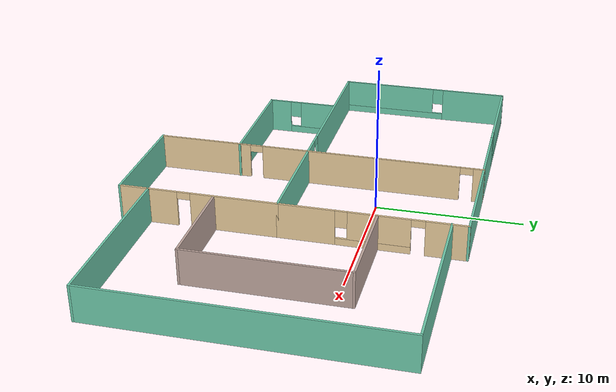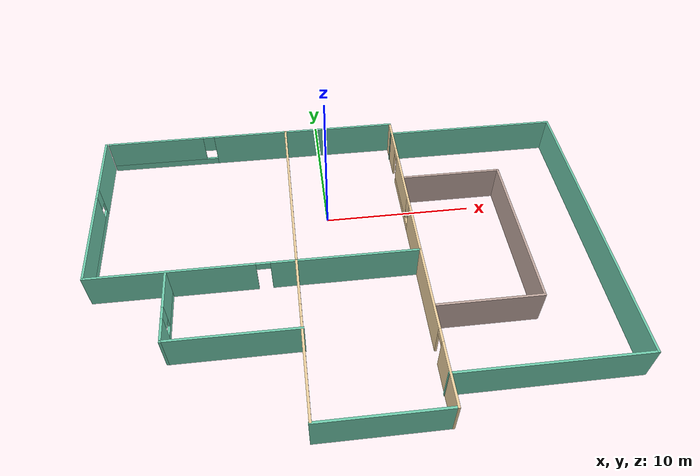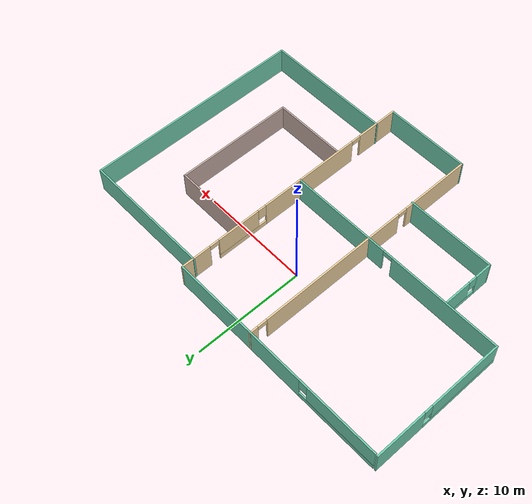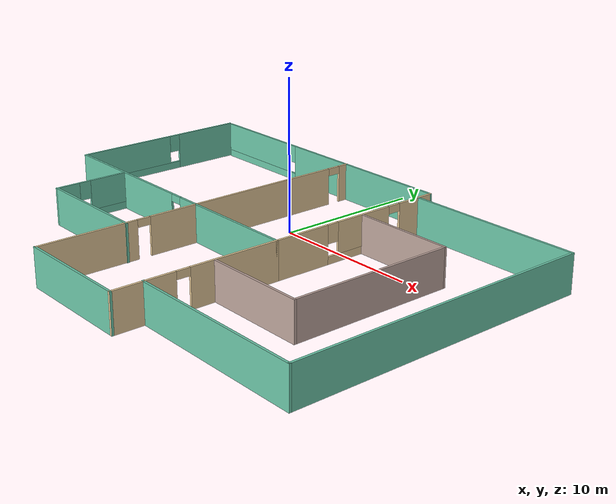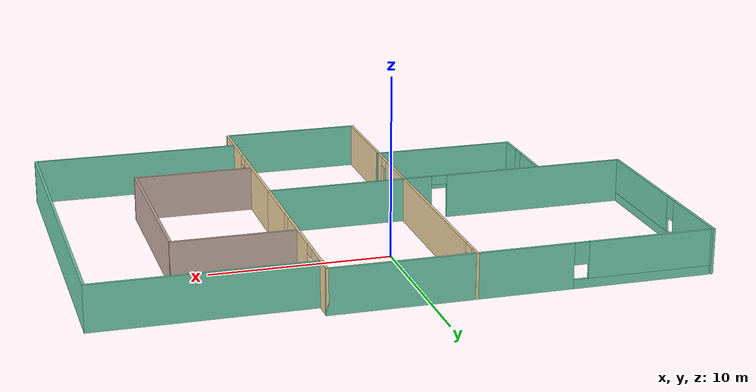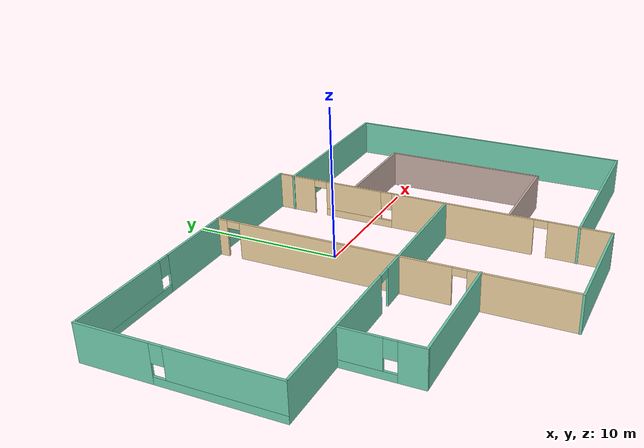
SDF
<?xml version='1.0'?>
<sdf version='1.6'>
  <model name='Building'>
    <pose frame=''>0.875279 -4.65541 0 0 -0 0</pose>
    <link name='Wall_10'>
      <pose frame=''>4.52008 5.41728 0 0 -0 1.5708</pose>
      <visual name='Wall_10_Visual_0'>
        <pose frame=''>-4.3118 0 1.25 0 -0 0</pose>
        <geometry>
          <box>
            <size>3.8764 0.15 2.5</size>
          </box>
        </geometry>
        <material>
          <script>
            <uri>file://media/materials/scripts/gazebo.material</uri>
            <name>Gazebo/Grey</name>
          </script>
          <ambient>0.921569 0.807843 0.615686 1</ambient>
        </material>
        <meta>
          <layer>0</layer>
        </meta>
      </visual>
      <collision name='Wall_10_Collision_0'>
        <geometry>
          <box>
            <size>3.8764 0.15 2.5</size>
          </box>
        </geometry>
        <pose frame=''>-4.3118 0 1.25 0 -0 0</pose>
      </collision>
      <visual name='Wall_10_Visual_1'>
        <pose frame=''>4.845 0 1.25 0 -0 0</pose>
        <geometry>
          <box>
            <size>2.80999 0.15 2.5</size>
          </box>
        </geometry>
        <material>
          <script>
            <uri>file://media/materials/scripts/gazebo.material</uri>
            <name>Gazebo/Grey</name>
          </script>
          <ambient>0.921569 0.807843 0.615686 1</ambient>
        </material>
        <meta>
          <layer>0</layer>
        </meta>
      </visual>
      <collision name='Wall_10_Collision_1'>
        <geometry>
          <box>
            <size>2.80999 0.15 2.5</size>
          </box>
        </geometry>
        <pose frame=''>4.845 0 1.25 0 -0 0</pose>
      </collision>
      <visual name='Wall_10_Visual_2'>
        <pose frame=''>0.083203 0 0.25 0 -0 0</pose>
        <geometry>
          <box>
            <size>4.91361 0.15 0.5</size>
          </box>
        </geometry>
        <material>
          <script>
            <uri>file://media/materials/scripts/gazebo.material</uri>
            <name>Gazebo/Grey</name>
          </script>
          <ambient>0.921569 0.807843 0.615686 1</ambient>
        </material>
        <meta>
          <layer>0</layer>
        </meta>
      </visual>
      <collision name='Wall_10_Collision_2'>
        <geometry>
          <box>
            <size>4.91361 0.15 0.5</size>
          </box>
        </geometry>
        <pose frame=''>0.083203 0 0.25 0 -0 0</pose>
      </collision>
      <visual name='Wall_10_Visual_3'>
        <pose frame=''>0.483203 0 1.5 0 -0 0</pose>
        <geometry>
          <box>
            <size>4.11361 0.15 2</size>
          </box>
        </geometry>
        <material>
          <script>
            <uri>file://media/materials/scripts/gazebo.material</uri>
            <name>Gazebo/Grey</name>
          </script>
          <ambient>0.921569 0.807843 0.615686 1</ambient>
        </material>
        <meta>
          <layer>0</layer>
        </meta>
      </visual>
      <collision name='Wall_10_Collision_3'>
        <geometry>
          <box>
            <size>4.11361 0.15 2</size>
          </box>
        </geometry>
        <pose frame=''>0.483203 0 1.5 0 -0 0</pose>
      </collision>
      <visual name='Wall_10_Visual_4'>
        <pose frame=''>-1.9736 0 1.9 0 -0 0</pose>
        <geometry>
          <box>
            <size>0.8 0.15 1.2</size>
          </box>
        </geometry>
        <material>
          <script>
            <uri>file://media/materials/scripts/gazebo.material</uri>
            <name>Gazebo/Grey</name>
          </script>
          <ambient>0.921569 0.807843 0.615686 1</ambient>
        </material>
        <meta>
          <layer>0</layer>
        </meta>
      </visual>
      <collision name='Wall_10_Collision_4'>
        <geometry>
          <box>
            <size>0.8 0.15 1.2</size>
          </box>
        </geometry>
        <pose frame=''>-1.9736 0 1.9 0 -0 0</pose>
      </collision>
      <visual name='Wall_10_Visual_5'>
        <pose frame=''>2.99001 0 2.25 0 -0 0</pose>
        <geometry>
          <box>
            <size>0.9 0.15 0.5</size>
          </box>
        </geometry>
        <material>
          <script>
            <uri>file://media/materials/scripts/gazebo.material</uri>
            <name>Gazebo/Grey</name>
          </script>
          <ambient>0.921569 0.807843 0.615686 1</ambient>
        </material>
        <meta>
          <layer>0</layer>
        </meta>
      </visual>
      <collision name='Wall_10_Collision_5'>
        <geometry>
          <box>
            <size>0.9 0.15 0.5</size>
          </box>
        </geometry>
        <pose frame=''>2.99001 0 2.25 0 -0 0</pose>
      </collision>
    </link>
    <link name='Wall_11'>
      <pose frame=''>-5.77992 11.5923 0 0 -0 3.14159</pose>
      <visual name='Wall_11_Visual_0'>
        <pose frame=''>-3.80191 0 1.25 0 -0 0</pose>
        <geometry>
          <box>
            <size>13.1462 0.15 2.5</size>
          </box>
        </geometry>
        <material>
          <script>
            <uri>file://media/materials/scripts/gazebo.material</uri>
            <name>Gazebo/Grey</name>
          </script>
          <ambient>0.435294 0.796078 0.67451 1</ambient>
        </material>
        <meta>
          <layer>0</layer>
        </meta>
      </visual>
      <collision name='Wall_11_Collision_0'>
        <geometry>
          <box>
            <size>13.1462 0.15 2.5</size>
          </box>
        </geometry>
        <pose frame=''>-3.80191 0 1.25 0 -0 0</pose>
      </collision>
      <visual name='Wall_11_Visual_1'>
        <pose frame=''>6.57309 0 0.25 0 -0 0</pose>
        <geometry>
          <box>
            <size>7.60381 0.15 0.5</size>
          </box>
        </geometry>
        <material>
          <script>
            <uri>file://media/materials/scripts/gazebo.material</uri>
            <name>Gazebo/Grey</name>
          </script>
          <ambient>0.435294 0.796078 0.67451 1</ambient>
        </material>
        <meta>
          <layer>0</layer>
        </meta>
      </visual>
      <collision name='Wall_11_Collision_1'>
        <geometry>
          <box>
            <size>7.60381 0.15 0.5</size>
          </box>
        </geometry>
        <pose frame=''>6.57309 0 0.25 0 -0 0</pose>
      </collision>
      <visual name='Wall_11_Visual_2'>
        <pose frame=''>6.97309 0 1.5 0 -0 0</pose>
        <geometry>
          <box>
            <size>6.80381 0.15 2</size>
          </box>
        </geometry>
        <material>
          <script>
            <uri>file://media/materials/scripts/gazebo.material</uri>
            <name>Gazebo/Grey</name>
          </script>
          <ambient>0.435294 0.796078 0.67451 1</ambient>
        </material>
        <meta>
          <layer>0</layer>
        </meta>
      </visual>
      <collision name='Wall_11_Collision_2'>
        <geometry>
          <box>
            <size>6.80381 0.15 2</size>
          </box>
        </geometry>
        <pose frame=''>6.97309 0 1.5 0 -0 0</pose>
      </collision>
      <visual name='Wall_11_Visual_3'>
        <pose frame=''>3.17119 0 1.9 0 -0 0</pose>
        <geometry>
          <box>
            <size>0.8 0.15 1.2</size>
          </box>
        </geometry>
        <material>
          <script>
            <uri>file://media/materials/scripts/gazebo.material</uri>
            <name>Gazebo/Grey</name>
          </script>
          <ambient>0.435294 0.796078 0.67451 1</ambient>
        </material>
        <meta>
          <layer>0</layer>
        </meta>
      </visual>
      <collision name='Wall_11_Collision_3'>
        <geometry>
          <box>
            <size>0.8 0.15 1.2</size>
          </box>
        </geometry>
        <pose frame=''>3.17119 0 1.9 0 -0 0</pose>
      </collision>
    </link>
    <link name='Wall_13'>
      <pose frame=''>-3.30365 0.032723 0 0 0 -1.5708</pose>
      <visual name='Wall_13_Visual_0'>
        <pose frame=''>-11.2544 0 1.25 0 -0 0</pose>
        <geometry>
          <box>
            <size>0.791174 0.15 2.5</size>
          </box>
        </geometry>
        <material>
          <script>
            <uri>file://media/materials/scripts/gazebo.material</uri>
            <name>Gazebo/Grey</name>
          </script>
          <ambient>0.921569 0.807843 0.615686 1</ambient>
        </material>
        <meta>
          <layer>0</layer>
        </meta>
      </visual>
      <collision name='Wall_13_Collision_0'>
        <geometry>
          <box>
            <size>0.791174 0.15 2.5</size>
          </box>
        </geometry>
        <pose frame=''>-11.2544 0 1.25 0 -0 0</pose>
      </collision>
      <visual name='Wall_13_Visual_1'>
        <pose frame=''>-2.92273 0 1.25 0 -0 0</pose>
        <geometry>
          <box>
            <size>14.0722 0.15 2.5</size>
          </box>
        </geometry>
        <material>
          <script>
            <uri>file://media/materials/scripts/gazebo.material</uri>
            <name>Gazebo/Grey</name>
          </script>
          <ambient>0.921569 0.807843 0.615686 1</ambient>
        </material>
        <meta>
          <layer>0</layer>
        </meta>
      </visual>
      <collision name='Wall_13_Collision_1'>
        <geometry>
          <box>
            <size>14.0722 0.15 2.5</size>
          </box>
        </geometry>
        <pose frame=''>-2.92273 0 1.25 0 -0 0</pose>
      </collision>
      <visual name='Wall_13_Visual_2'>
        <pose frame=''>8.33168 0 1.25 0 -0 0</pose>
        <geometry>
          <box>
            <size>6.63663 0.15 2.5</size>
          </box>
        </geometry>
        <material>
          <script>
            <uri>file://media/materials/scripts/gazebo.material</uri>
            <name>Gazebo/Grey</name>
          </script>
          <ambient>0.921569 0.807843 0.615686 1</ambient>
        </material>
        <meta>
          <layer>0</layer>
        </meta>
      </visual>
      <collision name='Wall_13_Collision_2'>
        <geometry>
          <box>
            <size>6.63663 0.15 2.5</size>
          </box>
        </geometry>
        <pose frame=''>8.33168 0 1.25 0 -0 0</pose>
      </collision>
      <visual name='Wall_13_Visual_3'>
        <pose frame=''>-10.4088 0 2.25 0 -0 0</pose>
        <geometry>
          <box>
            <size>0.9 0.15 0.5</size>
          </box>
        </geometry>
        <material>
          <script>
            <uri>file://media/materials/scripts/gazebo.material</uri>
            <name>Gazebo/Grey</name>
          </script>
          <ambient>0.921569 0.807843 0.615686 1</ambient>
        </material>
        <meta>
          <layer>0</layer>
        </meta>
      </visual>
      <collision name='Wall_13_Collision_3'>
        <geometry>
          <box>
            <size>0.9 0.15 0.5</size>
          </box>
        </geometry>
        <pose frame=''>-10.4088 0 2.25 0 -0 0</pose>
      </collision>
      <visual name='Wall_13_Visual_4'>
        <pose frame=''>4.56337 0 2.25 0 -0 0</pose>
        <geometry>
          <box>
            <size>0.9 0.15 0.5</size>
          </box>
        </geometry>
        <material>
          <script>
            <uri>file://media/materials/scripts/gazebo.material</uri>
            <name>Gazebo/Grey</name>
          </script>
          <ambient>0.921569 0.807843 0.615686 1</ambient>
        </material>
        <meta>
          <layer>0</layer>
        </meta>
      </visual>
      <collision name='Wall_13_Collision_4'>
        <geometry>
          <box>
            <size>0.9 0.15 0.5</size>
          </box>
        </geometry>
        <pose frame=''>4.56337 0 2.25 0 -0 0</pose>
      </collision>
    </link>
    <link name='Wall_20'>
      <pose frame=''>4.52008 -6.18272 0 0 0 -1.5708</pose>
      <visual name='Wall_20_Visual_0'>
        <pose frame=''>-2.49911 0 1.25 0 -0 0</pose>
        <geometry>
          <box>
            <size>6.00178 0.15 2.5</size>
          </box>
        </geometry>
        <material>
          <script>
            <uri>file://media/materials/scripts/gazebo.material</uri>
            <name>Gazebo/Grey</name>
          </script>
          <ambient>0.921569 0.807843 0.615686 1</ambient>
        </material>
        <meta>
          <layer>0</layer>
        </meta>
      </visual>
      <collision name='Wall_20_Collision_0'>
        <geometry>
          <box>
            <size>6.00178 0.15 2.5</size>
          </box>
        </geometry>
        <pose frame=''>-2.49911 0 1.25 0 -0 0</pose>
      </collision>
      <visual name='Wall_20_Visual_1'>
        <pose frame=''>3.45089 0 1.25 0 -0 0</pose>
        <geometry>
          <box>
            <size>4.09822 0.15 2.5</size>
          </box>
        </geometry>
        <material>
          <script>
            <uri>file://media/materials/scripts/gazebo.material</uri>
            <name>Gazebo/Grey</name>
          </script>
          <ambient>0.921569 0.807843 0.615686 1</ambient>
        </material>
        <meta>
          <layer>0</layer>
        </meta>
      </visual>
      <collision name='Wall_20_Collision_1'>
        <geometry>
          <box>
            <size>4.09822 0.15 2.5</size>
          </box>
        </geometry>
        <pose frame=''>3.45089 0 1.25 0 -0 0</pose>
      </collision>
      <visual name='Wall_20_Visual_2'>
        <pose frame=''>0.951781 0 2.25 0 -0 0</pose>
        <geometry>
          <box>
            <size>0.9 0.15 0.5</size>
          </box>
        </geometry>
        <material>
          <script>
            <uri>file://media/materials/scripts/gazebo.material</uri>
            <name>Gazebo/Grey</name>
          </script>
          <ambient>0.921569 0.807843 0.615686 1</ambient>
        </material>
        <meta>
          <layer>0</layer>
        </meta>
      </visual>
      <collision name='Wall_20_Collision_2'>
        <geometry>
          <box>
            <size>0.9 0.15 0.5</size>
          </box>
        </geometry>
        <pose frame=''>0.951781 0 2.25 0 -0 0</pose>
      </collision>
    </link>
    <link name='Wall_21'>
      <collision name='Wall_21_Collision'>
        <geometry>
          <box>
            <size>8 0.15 2.5</size>
          </box>
        </geometry>
        <pose frame=''>0 0 1.25 0 -0 0</pose>
      </collision>
      <visual name='Wall_21_Visual'>
        <pose frame=''>0 0 1.25 0 -0 0</pose>
        <geometry>
          <box>
            <size>8 0.15 2.5</size>
          </box>
        </geometry>
        <material>
          <script>
            <uri>file://media/materials/scripts/gazebo.material</uri>
            <name>Gazebo/Grey</name>
          </script>
          <ambient>0.435294 0.796078 0.67451 1</ambient>
        </material>
        <meta>
          <layer>0</layer>
        </meta>
      </visual>
      <pose frame=''>0.595079 -11.6077 0 0 -0 3.14159</pose>
    </link>
    <link name='Wall_23'>
      <collision name='Wall_23_Collision'>
        <geometry>
          <box>
            <size>8.25 0.15 2.5</size>
          </box>
        </geometry>
        <pose frame=''>0 0 1.25 0 -0 0</pose>
      </collision>
      <visual name='Wall_23_Visual'>
        <pose frame=''>0 0 1.25 0 -0 0</pose>
        <geometry>
          <box>
            <size>8.25 0.15 2.5</size>
          </box>
        </geometry>
        <material>
          <script>
            <uri>file://media/materials/scripts/gazebo.material</uri>
            <name>Gazebo/Grey</name>
          </script>
          <ambient>0.435294 0.796078 0.67451 1</ambient>
        </material>
        <meta>
          <layer>0</layer>
        </meta>
      </visual>
      <pose frame=''>-7.30029 -5.76127 0 0 -0 3.14159</pose>
    </link>
    <link name='Wall_24'>
      <pose frame=''>-11.3503 -3.33627 0 0 -0 1.5708</pose>
      <visual name='Wall_24_Visual_0'>
        <pose frame=''>-1.68102 0 1.25 0 -0 0</pose>
        <geometry>
          <box>
            <size>1.63796 0.15 2.5</size>
          </box>
        </geometry>
        <material>
          <script>
            <uri>file://media/materials/scripts/gazebo.material</uri>
            <name>Gazebo/Grey</name>
          </script>
          <ambient>0.435294 0.796078 0.67451 1</ambient>
        </material>
        <meta>
          <layer>0</layer>
        </meta>
      </visual>
      <collision name='Wall_24_Collision_0'>
        <geometry>
          <box>
            <size>1.63796 0.15 2.5</size>
          </box>
        </geometry>
        <pose frame=''>-1.68102 0 1.25 0 -0 0</pose>
      </collision>
      <visual name='Wall_24_Visual_1'>
        <pose frame=''>0.818982 0 0.25 0 -0 0</pose>
        <geometry>
          <box>
            <size>3.36204 0.15 0.5</size>
          </box>
        </geometry>
        <material>
          <script>
            <uri>file://media/materials/scripts/gazebo.material</uri>
            <name>Gazebo/Grey</name>
          </script>
          <ambient>0.435294 0.796078 0.67451 1</ambient>
        </material>
        <meta>
          <layer>0</layer>
        </meta>
      </visual>
      <collision name='Wall_24_Collision_1'>
        <geometry>
          <box>
            <size>3.36204 0.15 0.5</size>
          </box>
        </geometry>
        <pose frame=''>0.818982 0 0.25 0 -0 0</pose>
      </collision>
      <visual name='Wall_24_Visual_2'>
        <pose frame=''>1.21898 0 1.5 0 -0 0</pose>
        <geometry>
          <box>
            <size>2.56203 0.15 2</size>
          </box>
        </geometry>
        <material>
          <script>
            <uri>file://media/materials/scripts/gazebo.material</uri>
            <name>Gazebo/Grey</name>
          </script>
          <ambient>0.435294 0.796078 0.67451 1</ambient>
        </material>
        <meta>
          <layer>0</layer>
        </meta>
      </visual>
      <collision name='Wall_24_Collision_2'>
        <geometry>
          <box>
            <size>2.56203 0.15 2</size>
          </box>
        </geometry>
        <pose frame=''>1.21898 0 1.5 0 -0 0</pose>
      </collision>
      <visual name='Wall_24_Visual_3'>
        <pose frame=''>-0.462035 0 1.9 0 -0 0</pose>
        <geometry>
          <box>
            <size>0.8 0.15 1.2</size>
          </box>
        </geometry>
        <material>
          <script>
            <uri>file://media/materials/scripts/gazebo.material</uri>
            <name>Gazebo/Grey</name>
          </script>
          <ambient>0.435294 0.796078 0.67451 1</ambient>
        </material>
        <meta>
          <layer>0</layer>
        </meta>
      </visual>
      <collision name='Wall_24_Collision_3'>
        <geometry>
          <box>
            <size>0.8 0.15 1.2</size>
          </box>
        </geometry>
        <pose frame=''>-0.462035 0 1.9 0 -0 0</pose>
      </collision>
    </link>
    <link name='Wall_27'>
      <collision name='Wall_27_Collision'>
        <geometry>
          <box>
            <size>12 0.15 2.5</size>
          </box>
        </geometry>
        <pose frame=''>0 0 1.25 0 -0 0</pose>
      </collision>
      <visual name='Wall_27_Visual'>
        <pose frame=''>0 0 1.25 0 -0 0</pose>
        <geometry>
          <box>
            <size>12 0.15 2.5</size>
          </box>
        </geometry>
        <material>
          <script>
            <uri>file://media/materials/scripts/gazebo.material</uri>
            <name>Gazebo/Grey</name>
          </script>
          <ambient>0.435294 0.796078 0.67451 1</ambient>
        </material>
        <meta>
          <layer>0</layer>
        </meta>
      </visual>
      <pose frame=''>10.4049 10.5129 0 0 -0 0</pose>
    </link>
    <link name='Wall_28'>
      <collision name='Wall_28_Collision'>
        <geometry>
          <box>
            <size>20.25 0.15 2.5</size>
          </box>
        </geometry>
        <pose frame=''>0 0 1.25 0 -0 0</pose>
      </collision>
      <visual name='Wall_28_Visual'>
        <pose frame=''>0 0 1.25 0 -0 0</pose>
        <geometry>
          <box>
            <size>20.25 0.15 2.5</size>
          </box>
        </geometry>
        <material>
          <script>
            <uri>file://media/materials/scripts/gazebo.material</uri>
            <name>Gazebo/Grey</name>
          </script>
          <ambient>0.435294 0.796078 0.67451 1</ambient>
        </material>
        <meta>
          <layer>0</layer>
        </meta>
      </visual>
      <pose frame=''>16.3299 0.46285 0 0 0 -1.5708</pose>
    </link>
    <link name='Wall_29'>
      <collision name='Wall_29_Collision'>
        <geometry>
          <box>
            <size>12 0.15 2.5</size>
          </box>
        </geometry>
        <pose frame=''>0 0 1.25 0 -0 0</pose>
      </collision>
      <visual name='Wall_29_Visual'>
        <pose frame=''>0 0 1.25 0 -0 0</pose>
        <geometry>
          <box>
            <size>12 0.15 2.5</size>
          </box>
        </geometry>
        <material>
          <script>
            <uri>file://media/materials/scripts/gazebo.material</uri>
            <name>Gazebo/Grey</name>
          </script>
          <ambient>0.435294 0.796078 0.67451 1</ambient>
        </material>
        <meta>
          <layer>0</layer>
        </meta>
      </visual>
      <pose frame=''>10.4049 -9.58715 0 0 -0 3.14159</pose>
    </link>
    <link name='Wall_31'>
      <collision name='Wall_31_Collision'>
        <geometry>
          <box>
            <size>6.75 0.15 2.5</size>
          </box>
        </geometry>
        <pose frame=''>0 0 1.25 0 -0 0</pose>
      </collision>
      <visual name='Wall_31_Visual'>
        <pose frame=''>0 0 1.25 0 -0 0</pose>
        <geometry>
          <box>
            <size>6.75 0.15 2.5</size>
          </box>
        </geometry>
        <material>
          <script>
            <uri>file://media/materials/scripts/gazebo.material</uri>
            <name>Gazebo/Grey</name>
          </script>
          <ambient>0.760784 0.662745 0.627451 1</ambient>
        </material>
        <meta>
          <layer>0</layer>
        </meta>
      </visual>
      <pose frame=''>7.94855 5.79336 0 0 -0 0</pose>
    </link>
    <link name='Wall_32'>
      <collision name='Wall_32_Collision'>
        <geometry>
          <box>
            <size>11 0.15 2.5</size>
          </box>
        </geometry>
        <pose frame=''>0 0 1.25 0 -0 0</pose>
      </collision>
      <visual name='Wall_32_Visual'>
        <pose frame=''>0 0 1.25 0 -0 0</pose>
        <geometry>
          <box>
            <size>11 0.15 2.5</size>
          </box>
        </geometry>
        <material>
          <script>
            <uri>file://media/materials/scripts/gazebo.material</uri>
            <name>Gazebo/Grey</name>
          </script>
          <ambient>0.760784 0.662745 0.627451 1</ambient>
        </material>
        <meta>
          <layer>0</layer>
        </meta>
      </visual>
      <pose frame=''>11.2485 0.368355 0 0 0 -1.5708</pose>
    </link>
    <link name='Wall_33'>
      <collision name='Wall_33_Collision'>
        <geometry>
          <box>
            <size>6.75 0.15 2.5</size>
          </box>
        </geometry>
        <pose frame=''>0 0 1.25 0 -0 0</pose>
      </collision>
      <visual name='Wall_33_Visual'>
        <pose frame=''>0 0 1.25 0 -0 0</pose>
        <geometry>
          <box>
            <size>6.75 0.15 2.5</size>
          </box>
        </geometry>
        <material>
          <script>
            <uri>file://media/materials/scripts/gazebo.material</uri>
            <name>Gazebo/Grey</name>
          </script>
          <ambient>0.760784 0.662745 0.627451 1</ambient>
        </material>
        <meta>
          <layer>0</layer>
        </meta>
      </visual>
      <pose frame=''>7.94855 -5.05664 0 0 -0 3.14159</pose>
    </link>
    <link name='Wall_8'>
      <pose frame=''>-16.3299 5.41728 0 0 0 -1.5708</pose>
      <visual name='Wall_8_Visual_0'>
        <pose frame=''>-3.88424 0 1.25 0 -0 0</pose>
        <geometry>
          <box>
            <size>4.73152 0.15 2.5</size>
          </box>
        </geometry>
        <material>
          <script>
            <uri>file://media/materials/scripts/gazebo.material</uri>
            <name>Gazebo/Grey</name>
          </script>
          <ambient>0.435294 0.796078 0.67451 1</ambient>
        </material>
        <meta>
          <layer>0</layer>
        </meta>
      </visual>
      <collision name='Wall_8_Collision_0'>
        <geometry>
          <box>
            <size>4.73152 0.15 2.5</size>
          </box>
        </geometry>
        <pose frame=''>-3.88424 0 1.25 0 -0 0</pose>
      </collision>
      <visual name='Wall_8_Visual_1'>
        <pose frame=''>2.36576 0 0.25 0 -0 0</pose>
        <geometry>
          <box>
            <size>7.76848 0.15 0.5</size>
          </box>
        </geometry>
        <material>
          <script>
            <uri>file://media/materials/scripts/gazebo.material</uri>
            <name>Gazebo/Grey</name>
          </script>
          <ambient>0.435294 0.796078 0.67451 1</ambient>
        </material>
        <meta>
          <layer>0</layer>
        </meta>
      </visual>
      <collision name='Wall_8_Collision_1'>
        <geometry>
          <box>
            <size>7.76848 0.15 0.5</size>
          </box>
        </geometry>
        <pose frame=''>2.36576 0 0.25 0 -0 0</pose>
      </collision>
      <visual name='Wall_8_Visual_2'>
        <pose frame=''>2.76576 0 1.5 0 -0 0</pose>
        <geometry>
          <box>
            <size>6.96848 0.15 2</size>
          </box>
        </geometry>
        <material>
          <script>
            <uri>file://media/materials/scripts/gazebo.material</uri>
            <name>Gazebo/Grey</name>
          </script>
          <ambient>0.435294 0.796078 0.67451 1</ambient>
        </material>
        <meta>
          <layer>0</layer>
        </meta>
      </visual>
      <collision name='Wall_8_Collision_2'>
        <geometry>
          <box>
            <size>6.96848 0.15 2</size>
          </box>
        </geometry>
        <pose frame=''>2.76576 0 1.5 0 -0 0</pose>
      </collision>
      <visual name='Wall_8_Visual_3'>
        <pose frame=''>-1.11848 0 1.9 0 -0 0</pose>
        <geometry>
          <box>
            <size>0.8 0.15 1.2</size>
          </box>
        </geometry>
        <material>
          <script>
            <uri>file://media/materials/scripts/gazebo.material</uri>
            <name>Gazebo/Grey</name>
          </script>
          <ambient>0.435294 0.796078 0.67451 1</ambient>
        </material>
        <meta>
          <layer>0</layer>
        </meta>
      </visual>
      <collision name='Wall_8_Collision_3'>
        <geometry>
          <box>
            <size>0.8 0.15 1.2</size>
          </box>
        </geometry>
        <pose frame=''>-1.11848 0 1.9 0 -0 0</pose>
      </collision>
    </link>
    <link name='Wall_9'>
      <pose frame=''>-5.90492 -0.757723 0 0 -0 0</pose>
      <visual name='Wall_9_Visual_0'>
        <pose frame=''>-5.20794 0 1.25 0 -0 0</pose>
        <geometry>
          <box>
            <size>10.5841 0.15 2.5</size>
          </box>
        </geometry>
        <material>
          <script>
            <uri>file://media/materials/scripts/gazebo.material</uri>
            <name>Gazebo/Grey</name>
          </script>
          <ambient>0.435294 0.796078 0.67451 1</ambient>
        </material>
        <meta>
          <layer>0</layer>
        </meta>
      </visual>
      <collision name='Wall_9_Collision_0'>
        <geometry>
          <box>
            <size>10.5841 0.15 2.5</size>
          </box>
        </geometry>
        <pose frame=''>-5.20794 0 1.25 0 -0 0</pose>
      </collision>
      <visual name='Wall_9_Visual_1'>
        <pose frame=''>5.74206 0 1.25 0 -0 0</pose>
        <geometry>
          <box>
            <size>9.51588 0.15 2.5</size>
          </box>
        </geometry>
        <material>
          <script>
            <uri>file://media/materials/scripts/gazebo.material</uri>
            <name>Gazebo/Grey</name>
          </script>
          <ambient>0.435294 0.796078 0.67451 1</ambient>
        </material>
        <meta>
          <layer>0</layer>
        </meta>
      </visual>
      <collision name='Wall_9_Collision_1'>
        <geometry>
          <box>
            <size>9.51588 0.15 2.5</size>
          </box>
        </geometry>
        <pose frame=''>5.74206 0 1.25 0 -0 0</pose>
      </collision>
      <visual name='Wall_9_Visual_2'>
        <pose frame=''>0.53412 0 2.25 0 -0 0</pose>
        <geometry>
          <box>
            <size>0.9 0.15 0.5</size>
          </box>
        </geometry>
        <material>
          <script>
            <uri>file://media/materials/scripts/gazebo.material</uri>
            <name>Gazebo/Grey</name>
          </script>
          <ambient>0.435294 0.796078 0.67451 1</ambient>
        </material>
        <meta>
          <layer>0</layer>
        </meta>
      </visual>
      <collision name='Wall_9_Collision_2'>
        <geometry>
          <box>
            <size>0.9 0.15 0.5</size>
          </box>
        </geometry>
        <pose frame=''>0.53412 0 2.25 0 -0 0</pose>
      </collision>
    </link>
    <static>1</static>
  </model>
</sdf>
